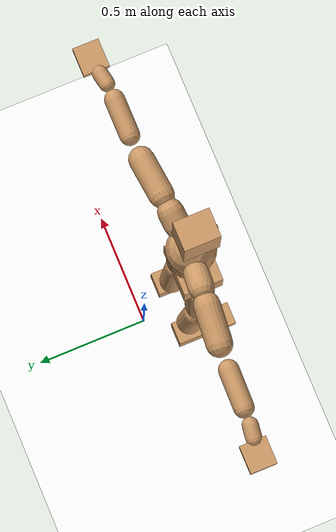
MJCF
<mujoco model="humanoid">
  <option integrator="implicitfast" />

  <visual>
    <global offwidth="1280" offheight="960" />
    <headlight active="1" ambient="0.34 0.34 0.34" diffuse="0.5 0.5 0.5" />
  </visual>

  <default>
    <joint damping="2" stiffness="2" armature="0.01" limited="true" solimplimit="0 .99 .01" />
    <geom condim="1" friction="0.7 0.005 0.0001" solimp=".99 .99 .003" solref="0.015 1" margin="0.001" rgba="0.8 0.6 .4 1" />
    <default class="smplcontact">
      <geom condim="3" friction="1. 0.005 0.0001" solref="0.015 1" solimp="0.98 0.98 0.001" priority="1" />
    </default>
    <default class="stiff_medium">
      <joint stiffness="10" />
    </default>
    <default class="stiff_medium_higher">
      <joint stiffness="50" />
    </default>
    <default class="stiff_high">
      <joint stiffness="100" />
    </default>
  </default>

  <asset>
    <texture type="skybox" builtin="gradient" rgb1="0.99 0.99 0.99" rgb2="0.608 0.828 0.892" width="100" />
    <texture builtin="flat" height="1278" mark="cross" markrgb="1 1 1" name="texgeom" random="0.01" rgb1="0.8 0.6 0.4" rgb2="0.8 0.6 0.4" type="cube" width="127" />
    <texture name="texplane" type="2d" builtin="checker" markrgb="1 1 1" rgb1="0.756 0.772 0.76" rgb2="0.6 0.6 0.6" width="100" height="100" />
    <material name="MatPlane" reflectance="0.5" texture="texplane" texrepeat="1 1" texuniform="true" />
    <material name="geom" texture="texgeom" texuniform="true" />
  </asset>

  <worldbody>
    <light name="tracking_light" pos="0 0 7" dir="0 0 -1" directional="true" cutoff="100" exponent="1" diffuse="1 1 1" specular="0.1 0.1 0.1" mode="trackcom" />
    <camera name="back" pos="0 3 2.4" xyaxes="-1 0 0 0 -1 2" mode="trackcom" />
    <camera name="side" pos="-3 0 2.4" xyaxes="0 -1 0 1 0 2" mode="trackcom" />
    <camera name="front_side" pos="-2.8 -2.8 0.8" xyaxes="0.5 -0.5 0 0.1 0.1 1" mode="trackcom" />
    <geom condim="3" name="floor" pos="0 0 0" rgba="1 1 1 1" size="100 100 .2" type="plane" material="MatPlane" />
    <body name="Pelvis" pos="-0.0018 -0.2233 0.994703" euler="90 0 0">
      <site name="Pelvis" size="0.01" />
      <freejoint name="Pelvis" />
      <geom type="box" pos="-0.0000 -0.0121 -0.0055" size="0.110909 0.0749075 0.0861125" quat="1.0000 0.0000 0.0000 0.0000" density="3165.830099" name="Pelvis" />
      <body name="L_Hip" pos="0.0738438 -0.0971125 -0.007225">
        <joint name="L_Hip_x" type="hinge" pos="0 0 0" axis="1 0 0" stiffness="12.0570453" range="-160.0 22.92" class="stiff_medium" damping="18.611115075663335" armature="0.012767956023173823"/>
        <joint name="L_Hip_y" type="hinge" pos="0 0 0" axis="0 1 0" stiffness="12.049642400000003" range="-70.0 70.0" class="stiff_medium" damping="12.238197968732024" armature="0.012429704098262417"/>
        <joint name="L_Hip_z" type="hinge" pos="0 0 0" axis="0 0 1" stiffness="12.051124" range="-28.65 90.0" class="stiff_medium" damping="12.404606046781211" armature="0.01276845638430415"/>
        <geom type="capsule" density="2040.816327" fromto="0.00733125 -0.0796875 -0.00095625 0.0291125 -0.318963 -0.003825" size="0.0638063" name="L_Hip" />
        <body name="L_Knee" pos="0.0364437 -0.39865 -0.00478125">
          <joint name="L_Knee_x" type="hinge" pos="0 0 0" axis="1 0 0" range="-5.16 171.89" damping="9.889716676944522" armature="0.012708359062400275" stiffness="2.4050729"/>
          <joint name="L_Knee_y" type="hinge" pos="0 0 0" axis="0 1 0" range="-4.58 6.88" damping="9.765792463482095" armature="0.01237188524481116" stiffness="2.4089574"/>
          <joint name="L_Knee_z" type="hinge" pos="0 0 0" axis="0 0 1" range="-6.88 4.58" damping="9.885620689790002" armature="0.01271077467530331" stiffness="2.4026244200000004"/>
          <geom type="capsule" density="1234.567901" fromto="-0.00286875 -0.084575 -0.00924375 -0.0115812 -0.3383 -0.0371875" size="0.0561288" name="L_Knee" />
          <body name="L_Ankle" pos="-0.01445 -0.422875 -0.0464313">
            <joint name="L_Ankle_x" type="hinge" pos="0 0 0" axis="1 0 0" range="-45.84 45.84" class="stiff_medium" damping="7.279881345093119" armature="0.012406609318611695" stiffness="11.8656899"/>
            <joint name="L_Ankle_y" type="hinge" pos="0 0 0" axis="0 1 0" range="-74.48 22.92" class="stiff_medium" damping="3.637837973778958" armature="0.012392268439298068" stiffness="11.865700499999999"/>
            <joint name="L_Ankle_z" type="hinge" pos="0 0 0" axis="0 0 1" range="-4.58 4.58" class="stiff_medium" damping="7.248061967272932" armature="0.012298373079385656" stiffness="11.8657073"/>
            <geom type="box" pos="0.0247563 -0.0253937 0.0257125" size="0.0501113 0.04814 0.0881875" quat="1.0000 0.0000 0.0000 0.0000" density="449.071558" name="L_Ankle" class="smplcontact" />
            <body name="L_Toe" pos="0.02805 -0.0592875 0.126756">
              <joint name="L_Toe_x" type="hinge" pos="0 0 0" axis="1 0 0" range="-91.67 22.92" armature="0.012243906944702197" damping="2.4106650965638154" stiffness="2.3731421"/>
              <joint name="L_Toe_y" type="hinge" pos="0 0 0" axis="0 1 0" range="-4.58 4.58" armature="0.012178059822624987" damping="2.4041740684260575" stiffness="2.37314196"/>
              <joint name="L_Toe_z" type="hinge" pos="0 0 0" axis="0 0 1" range="-4.58 4.58" armature="0.012044916535800984" damping="2.3909944888171846" stiffness="2.37314"/>
              <geom type="box" pos="-0.0031875 0.00584375 0.02635" size="0.0495925 0.02075 0.05146" quat="1.0000 0.0000 0.0000 0.0000" density="423.206892" name="L_Toe" class="smplcontact" />
            </body>
          </body>
        </body>
      </body>
      <body name="R_Hip" pos="-0.0719313 -0.0961562 -0.00456875">
        <joint name="R_Hip_x" type="hinge" pos="0 0 0" axis="1 0 0" stiffness="12.0570453" range="-160.0 22.92" class="stiff_medium" damping="18.611115075663335" armature="0.012767956023173823"/>
        <joint name="R_Hip_y" type="hinge" pos="0 0 0" axis="0 1 0" stiffness="12.049642400000003" range="-70.0 70.0" class="stiff_medium" damping="12.238197968732024" armature="0.012429704098262417"/>
        <joint name="R_Hip_z" type="hinge" pos="0 0 0" axis="0 0 1" stiffness="12.051124" range="-90.0 28.65" class="stiff_medium" damping="12.404606046781211" armature="0.01276845638430415"/>
        <geom type="capsule" density="2040.816327" fromto="-0.00818125 -0.0812812 -0.0019125 -0.0325125 -0.325231 -0.00754375" size="0.0628725" name="R_Hip" />
        <body name="R_Knee" pos="-0.0406938 -0.406512 -0.00945625">
          <joint name="R_Knee_x" type="hinge" pos="0 0 0" axis="1 0 0" range="-5.16 171.89" damping="9.889716676944522" armature="0.012708359062400275" stiffness="2.4050729"/>
          <joint name="R_Knee_y" type="hinge" pos="0 0 0" axis="0 1 0" range="-6.88 4.58" damping="9.765792463482095" armature="0.01237188524481116" stiffness="2.4089574"/>
          <joint name="R_Knee_z" type="hinge" pos="0 0 0" axis="0 0 1" range="-4.58 6.88" damping="9.885620689790002" armature="0.01271077467530331" stiffness="2.4026244200000004"/>
          <geom type="capsule" density="1234.567901" fromto="0.0034 -0.0846812 -0.00903125 0.0133875 -0.338619 -0.0359125" size="0.0561288" name="R_Knee" />
          <body name="R_Ankle" pos="0.0167875 -0.4233 -0.0449437">
            <joint name="R_Ankle_x" type="hinge" pos="0 0 0" axis="1 0 0" range="-45.84 45.84" class="stiff_medium" damping="7.279881345093119" armature="0.012406609318611695" stiffness="11.8656899"/>
            <joint name="R_Ankle_y" type="hinge" pos="0 0 0" axis="0 1 0" range="-22.92 74.48" class="stiff_medium" damping="3.637837973778958" armature="0.012392268439298068" stiffness="11.865700499999999"/>
            <joint name="R_Ankle_z" type="hinge" pos="0 0 0" axis="0 0 1" range="-4.58 4.58" class="stiff_medium" damping="7.248061967272932" armature="0.012298373079385656" stiffness="11.8657073"/>
            <geom type="box" pos="-0.022525 -0.0184875 0.0272" size="0.0501113 0.0495925 0.0897437" quat="1.0000 0.0000 0.0000 0.0000" density="434.700981" name="R_Ankle" class="smplcontact" />
            <body name="R_Toe" pos="-0.0269875 -0.0511062 0.131006">
              <joint name="R_Toe_x" type="hinge" pos="0 0 0" axis="1 0 0" range="-91.67 22.92" armature="0.012243906944702197" damping="2.4106650965638154" stiffness="2.3731421"/>
              <joint name="R_Toe_y" type="hinge" pos="0 0 0" axis="0 1 0" range="-4.58 4.58" armature="0.012178059822624987" damping="2.4041740684260575" stiffness="2.37314196"/>
              <joint name="R_Toe_z" type="hinge" pos="0 0 0" axis="0 0 1" range="-4.58 4.58" armature="0.012044916535800984" damping="2.3909944888171846" stiffness="2.37314"/>
              <geom type="box" pos="0.0044625 0.00478125 0.0241188" size="0.0496963 0.02241 0.0511487" quat="1.0000 0.0000 0.0000 0.0000" density="407.384095" name="R_Toe" class="smplcontact" />
            </body>
          </body>
        </body>
      </body>
      <body name="Torso" pos="-0.002625 0.11445 -0.028035">
        <joint name="Torso_x" type="hinge" pos="0 0 0" axis="1 0 0" range="-25.78 57.3" class="stiff_medium" damping="17.633932648669425" armature="0.011958511967310187" stiffness="11.556829200000001"/>
        <joint name="Torso_y" type="hinge" pos="0 0 0" axis="0 1 0" range="-57.3 57.3" class="stiff_high" damping="24.18914311773822" armature="0.012732940936092601" stiffness="114.88207"/>
        <joint name="Torso_z" type="hinge" pos="0 0 0" axis="0 0 1" range="-34.38 34.38" class="stiff_high" damping="23.770099393457826" armature="0.01222595489725093" stiffness="115.53650204081632"/>
        <geom type="capsule" density="2040.816327" fromto="0.002625 0.06384 0.000525 0.00315 0.078015 0.00063" size="0.0797838" name="Torso" />
        <body name="Spine" pos="0.005775 0.14196 0.001155">
          <joint name="Spine_x" type="hinge" pos="0 0 0" axis="1 0 0" stiffness="11.4951296" range="-25.78 57.3" class="stiff_medium" damping="17.43681682572027" armature="0.01175541648578703"/>
          <joint name="Spine_y" type="hinge" pos="0 0 0" axis="0 1 0" stiffness="11.485546600000001" range="-57.3 57.3" class="stiff_high" damping="9.676407138234314" armature="0.012737864482771982"/>
          <joint name="Spine_z" type="hinge" pos="0 0 0" axis="0 0 1" stiffness="22.9272388" range="-34.38 34.38" class="stiff_high" damping="14.24897016805365" armature="0.012299365385934818"/>
          <geom type="capsule" density="2040.816327" fromto="0.000735 0.02499 0.01197 0.00084 0.030555 0.0147" size="0.0783313" name="Spine" />
          <body name="Chest" pos="0.001575 0.055545 0.02667">
            <joint name="Chest_x" type="hinge" pos="0 0 0" axis="1 0 0" stiffness="11.441318599999999" range="-25.78 57.3" class="stiff_medium" damping="17.316347957951574" armature="0.01164807103812332"/>
            <joint name="Chest_y" type="hinge" pos="0 0 0" axis="0 1 0" stiffness="11.727072600000001" range="-57.3 57.3" class="stiff_high" damping="9.779941013431216" armature="0.012743915495878156"/>
            <joint name="Chest_z" type="hinge" pos="0 0 0" axis="0 0 1" stiffness="22.8055004" range="-34.38 34.38" class="stiff_high" damping="14.240161103593424" armature="0.012349736826372954"/>
            <geom type="capsule" density="2040.816327" fromto="-0.000945 0.07161 -0.018165 -0.00105 0.087465 -0.02226" size="0.103958" name="Chest" />
            <body name="Neck" pos="-0.00294 0.224595 -0.045045">
              <joint name="Neck_x" type="hinge" pos="0 0 0" axis="1 0 0" range="-28.65 57.3" class="stiff_medium_higher" damping="10.634721418697984" armature="0.010665688146100675" stiffness="53.019223000000004"/>
              <joint name="Neck_y" type="hinge" pos="0 0 0" axis="0 1 0" range="-40.11 40.11" class="stiff_medium_higher" damping="10.654905542289592" armature="0.010724611547814582" stiffness="52.928263"/>
              <joint name="Neck_z" type="hinge" pos="0 0 0" axis="0 0 1" range="-40.11 40.11" class="stiff_medium_higher" damping="10.607102824165203" armature="0.01065989610780139" stiffness="52.77285499999999"/>
              <geom type="capsule" density="1000" fromto="0.00105 0.01365 0.010815 0.004305 0.0546 0.043155" size="0.045235" name="Neck" />
              <body name="Head" pos="0.005265 0.0658125 0.0519412">
                <joint name="Head_x" type="hinge" pos="0 0 0" axis="1 0 0" range="-28.65 57.3" class="stiff_medium_higher" damping="2.1149987447763574" armature="0.010640895595426915" stiffness="52.5475"/>
                <joint name="Head_y" type="hinge" pos="0 0 0" axis="0 1 0" range="-40.11 40.11" class="stiff_medium_higher" damping="2.1149959100124205" armature="0.010640867071148166" stiffness="52.5475"/>
                <joint name="Head_z" type="hinge" pos="0 0 0" axis="0 0 1" range="-40.11 40.11" class="stiff_medium_higher" damping="2.1149989184406937" armature="0.010640897342892868" stiffness="52.5475"/>
                <geom type="box" pos="-0.0042525 0.088695 -0.011745" size="0.0613575 0.116843 0.07695" quat="1.0000 0.0000 0.0000 0.0000" density="1018.069894" name="Head" />
                <geom type="capsule" name="nose" size="0.02025 0.010125" pos="0 0.070875 0.050625" quat="1 0 0 0" mass="0" contype="0" conaffinity="0" />
              </body>
            </body>
            <body name="L_Thorax" pos="0.083725 0.129306 -0.0362312">
              <joint name="L_Thorax_x" type="hinge" pos="0 0 0" axis="1 0 0" range="-10.89 4.58" class="stiff_medium_higher" damping="24.55582574022964" armature="0.012520125034701426" stiffness="60.20193250000001"/>
              <joint name="L_Thorax_y" type="hinge" pos="0 0 0" axis="0 1 0" range="-28.65 17.19" class="stiff_medium_higher" damping="24.809231041642242" armature="0.012772502825784782" stiffness="60.2366225"/>
              <joint name="L_Thorax_z" type="hinge" pos="0 0 0" axis="0 0 1" range="-31.51 40.11" class="stiff_medium_higher" damping="24.809317275990285" armature="0.012772730929762175" stiffness="60.23596550000001"/>
              <geom type="capsule" density="1000" fromto="0.0193375 0.00648125 -0.0019125 0.07735 0.025925 -0.00754375" size="0.0540538" name="L_Thorax" />
              <body name="L_Shoulder" pos="0.0966875 0.0324062 -0.00945625">
                <joint name="L_Shoulder_x" type="hinge" pos="0 0 0" axis="1 0 0" range="-97.4 97.4" class="stiff_medium" damping="7.336216481322724" armature="0.01242018872003058" stiffness="12.036870299999997"/>
                <joint name="L_Shoulder_y" type="hinge" pos="0 0 0" axis="0 1 0" range="-108.86 80.21" class="stiff_medium" damping="7.439025620270408" armature="0.01276314692392544" stiffness="12.0440303"/>
                <joint name="L_Shoulder_z" type="hinge" pos="0 0 0" axis="0 0 1" range="-97.4 85.94" class="stiff_medium" damping="7.439176639871107" armature="0.012763438779619492" stiffness="12.044243899999998"/>
                <geom type="capsule" density="1000" fromto="0.0551438 -0.0027625 -0.00584375 0.220681 -0.0108375 -0.023375" size="0.0536388" name="L_Shoulder" />
                <body name="L_Elbow" pos="0.275825 -0.0136 -0.0292188">
                  <joint name="L_Elbow_x" type="hinge" pos="0 0 0" axis="1 0 0" range="-17.19 4.58" damping="6.068876824023298" armature="0.012262371643168866" stiffness="2.40288042"/>
                  <joint name="L_Elbow_y" type="hinge" pos="0 0 0" axis="0 1 0" range="-180.0 17.19" damping="6.1805303657014115" armature="0.0127176642303541" stiffness="2.40289128"/>
                  <joint name="L_Elbow_z" type="hinge" pos="0 0 0" axis="0 0 1" range="-100.84 4.58" damping="6.180702179993542" armature="0.012719196018290597" stiffness="2.4027354799999996"/>
                  <geom type="capsule" density="1000" fromto="0.0529125 0.0019125 -0.0002125 0.211862 0.00765 -0.00095625" size="0.0420188" name="L_Elbow" />
                  <body name="L_Wrist" pos="0.264775 0.0095625 -0.001275">
                    <joint name="L_Wrist_x" type="hinge" pos="0 0 0" axis="1 0 0" range="-180.0 22.92" armature="0.012219968858193871" damping="2.41355047935313" stiffness="2.3834864000000002"/>
                    <joint name="L_Wrist_y" type="hinge" pos="0 0 0" axis="0 1 0" range="-17.19 17.19" armature="0.012566462316760247" damping="2.448297100695518" stiffness="2.38498256"/>
                    <joint name="L_Wrist_z" type="hinge" pos="0 0 0" axis="0 0 1" range="-22.92 22.92" armature="0.012585698224598164" damping="2.449922537514998" stiffness="2.38450038"/>
                    <geom type="capsule" density="1000" fromto="0.01785 -0.0017 -0.0031875 0.0714 -0.00690625 -0.01275" size="0.0329925" name="L_Wrist" class="smplcontact" />
                    <body name="L_Hand" pos="0.08925 -0.0087125 -0.0158313">
                      <joint name="L_Hand_x" type="hinge" pos="0 0 0" axis="1 0 0" range="-17.19 17.19" armature="0.012046551178696583" damping="2.3911570997598584" stiffness="2.37314074"/>
                      <joint name="L_Hand_y" type="hinge" pos="0 0 0" axis="0 1 0" range="-51.57 51.57" armature="0.01232991505954797" damping="2.4191164817825372" stiffness="2.37314066"/>
                      <joint name="L_Hand_z" type="hinge" pos="0 0 0" axis="0 0 1" range="-91.67 91.67" armature="0.012405449704475498" damping="2.426515251018575" stiffness="2.373141"/>
                      <geom type="box" pos="0.0523812 0.0010625 -0.0061625" size="0.0606938 0.0163925 0.0558175" quat="1.0000 0.0000 0.0000 0.0000" density="400.552564" name="L_Hand" class="smplcontact" />
                    </body>
                  </body>
                </body>
              </body>
            </body>
            <body name="R_Thorax" pos="-0.0869125 0.126225 -0.0410125">
              <joint name="R_Thorax_x" type="hinge" pos="0 0 0" axis="1 0 0" range="-10.89 4.58" class="stiff_medium_higher" damping="24.55582574022964" armature="0.012520125034701426" stiffness="60.20193250000001"/>
              <joint name="R_Thorax_y" type="hinge" pos="0 0 0" axis="0 1 0" range="-17.19 28.65" class="stiff_medium_higher" damping="24.809231041642242" armature="0.012772502825784782" stiffness="60.2366225"/>
              <joint name="R_Thorax_z" type="hinge" pos="0 0 0" axis="0 0 1" range="-40.11 31.51" class="stiff_medium_higher" damping="24.809317275990285" armature="0.012772730929762175" stiffness="60.23596550000001"/>
              <geom type="capsule" density="1000" fromto="-0.0204 0.00690625 -0.0019125 -0.0816 0.027625 -0.00775625" size="0.0530163" name="R_Thorax" />
              <body name="R_Shoulder" pos="-0.102 0.0346375 -0.00966875">
                <joint name="R_Shoulder_x" type="hinge" pos="0 0 0" axis="1 0 0" range="-97.4 97.4" class="stiff_medium" damping="7.336216481322724" armature="0.01242018872003058" stiffness="12.036870299999997"/>
                <joint name="R_Shoulder_y" type="hinge" pos="0 0 0" axis="0 1 0" range="-80.21 108.86" class="stiff_medium" damping="7.439025620270408" armature="0.01276314692392544" stiffness="12.0440303"/>
                <joint name="R_Shoulder_z" type="hinge" pos="0 0 0" axis="0 0 1" range="-85.94 97.4" class="stiff_medium" damping="7.439176639871107" armature="0.012763438779619492" stiffness="12.044243899999998"/>
                <geom type="capsule" density="1000" fromto="-0.0538687 -0.00286875 -0.00456875 -0.215688 -0.0113687 -0.0181688" size="0.0550913" name="R_Shoulder" />
                <body name="R_Elbow" pos="-0.269556 -0.0141312 -0.0227375">
                  <joint name="R_Elbow_x" type="hinge" pos="0 0 0" axis="1 0 0" range="-17.19 4.58" damping="6.068876824023298" armature="0.012262371643168866" stiffness="2.40288042"/>
                  <joint name="R_Elbow_y" type="hinge" pos="0 0 0" axis="0 1 0" range="-17.19 180.0" damping="6.1805303657014115" armature="0.0127176642303541" stiffness="2.40289128"/>
                  <joint name="R_Elbow_z" type="hinge" pos="0 0 0" axis="0 0 1" range="-4.58 100.84" damping="6.180702179993542" armature="0.012719196018290597" stiffness="2.4027354799999996"/>
                  <geom type="capsule" density="1000" fromto="-0.0542938 0.0017 -0.00116875 -0.216963 0.0065875 -0.004675" size="0.04233" name="R_Elbow" />
                  <body name="R_Wrist" pos="-0.271256 0.0082875 -0.00595">
                    <joint name="R_Wrist_x" type="hinge" pos="0 0 0" axis="1 0 0" range="-180.0 22.92" armature="0.012219968858193871" damping="2.41355047935313" stiffness="2.3834864000000002"/>
                    <joint name="R_Wrist_y" type="hinge" pos="0 0 0" axis="0 1 0" range="-17.19 17.19" armature="0.012566462316760247" damping="2.448297100695518" stiffness="2.38498256"/>
                    <joint name="R_Wrist_z" type="hinge" pos="0 0 0" axis="0 0 1" range="-22.92 22.92" armature="0.012585698224598164" damping="2.449922537514998" stiffness="2.38450038"/>
                    <geom type="capsule" density="1000" fromto="-0.0179562 -0.001275 -0.00223125 -0.0719313 -0.00520625 -0.00881875" size="0.0338225" name="R_Wrist" class="smplcontact" />
                    <body name="R_Hand" pos="-0.0898875 -0.00648125 -0.0109438">
                      <joint name="R_Hand_x" type="hinge" pos="0 0 0" axis="1 0 0" range="-17.19 17.19" armature="0.012046551178696583" damping="2.3911570997598584" stiffness="2.37314074"/>
                      <joint name="R_Hand_y" type="hinge" pos="0 0 0" axis="0 1 0" range="-51.57 51.57" armature="0.01232991505954797" damping="2.4191164817825372" stiffness="2.37314066"/>
                      <joint name="R_Hand_z" type="hinge" pos="0 0 0" axis="0 0 1" range="-91.67 91.67" armature="0.012405449704475498" damping="2.426515251018575" stiffness="2.373141"/>
                      <geom type="box" pos="-0.0490875 -0.00095625 -0.00839375" size="0.0590338 0.017015 0.0566475" quat="1.0000 0.0000 0.0000 0.0000" density="403.679611" name="R_Hand" class="smplcontact" />
                    </body>
                  </body>
                </body>
              </body>
            </body>
          </body>
        </body>
      </body>
    </body>
  </worldbody>
  <actuator>
    <general name="L_Hip_x" joint="L_Hip_x" biastype="affine" gainprm="346.4351598873321" biasprm="-259.6180391283374 -217.0268154 -2.4814820100884445" ctrllimited="true" ctrlrange="-1 1" forcerange="-434.0536308 434.0536308" />
    <general name="L_Hip_y" joint="L_Hip_y" biastype="affine" gainprm="264.9854762955686" biasprm="0.0 -216.89356320000005 -2.4476395937464046" ctrllimited="true" ctrlrange="-1 1" forcerange="-433.7871264000001 433.7871264000001" />
    <general name="L_Hip_z" joint="L_Hip_z" biastype="affine" gainprm="224.60280447814964" biasprm="116.13469915494714 -216.920232 -2.480921209356242" ctrllimited="true" ctrlrange="-1 1" forcerange="-433.840464 433.840464" />
    <general name="L_Knee_x" joint="L_Knee_x" biastype="affine" gainprm="334.4367984058894" biasprm="314.9429392726006 -216.456561 -2.4724291692361304" ctrllimited="true" ctrlrange="-1 1" forcerange="-432.913122 432.913122" />
    <general name="L_Knee_y" joint="L_Knee_y" biastype="affine" gainprm="21.68221362441445" biasprm="4.351578650624192 -216.806166 -2.4414481158705237" ctrllimited="true" ctrlrange="-1 1" forcerange="-433.612332 433.612332" />
    <general name="L_Knee_z" joint="L_Knee_z" biastype="affine" gainprm="21.62521260594931" biasprm="-4.340138655644277 -216.23619780000004 -2.4714051724475006" ctrllimited="true" ctrlrange="-1 1" forcerange="-432.4723956000001 432.4723956000001" />
    <general name="L_Ankle_x" joint="L_Ankle_x" biastype="affine" gainprm="85.4392603913567" biasprm="0.0 -106.7912091 -2.4266271150310397" ctrllimited="true" ctrlrange="-1 1" forcerange="-213.5824182 213.5824182" />
    <general name="L_Ankle_y" joint="L_Ankle_y" biastype="affine" gainprm="90.76997596240955" biasprm="-48.050307603920295 -106.79130449999998 -2.425225315852639" ctrllimited="true" ctrlrange="-1 1" forcerange="-213.58260899999996 213.58260899999996" />
    <general name="L_Ankle_z" joint="L_Ankle_z" biastype="affine" gainprm="8.536483124281833" biasprm="0.0 -106.79136570000001 -2.416020655757644" ctrllimited="true" ctrlrange="-1 1" forcerange="-213.58273140000003 213.58273140000003" />
    <general name="L_Toe_x" joint="L_Toe_x" biastype="affine" gainprm="85.43195327649484" biasprm="-51.25618978758199 -85.4331156 -0.9642660386255262" ctrllimited="true" ctrlrange="-1 1" forcerange="-170.8662312 170.8662312" />
    <general name="L_Toe_y" joint="L_Toe_y" biastype="affine" gainprm="6.829187938274901" biasprm="0.0 -85.43311055999999 -0.961669627370423" ctrllimited="true" ctrlrange="-1 1" forcerange="-170.86622111999998 170.86622111999998" />
    <general name="L_Toe_z" joint="L_Toe_z" biastype="affine" gainprm="6.829182297985114" biasprm="0.0 -85.43303999999999 -0.9563977955268739" ctrllimited="true" ctrlrange="-1 1" forcerange="-170.86607999999998 170.86607999999998" />
    <general name="R_Hip_x" joint="R_Hip_x" biastype="affine" gainprm="346.4351598873321" biasprm="-259.6180391283374 -217.0268154 -2.4814820100884445" ctrllimited="true" ctrlrange="-1 1" forcerange="-434.0536308 434.0536308" />
    <general name="R_Hip_y" joint="R_Hip_y" biastype="affine" gainprm="264.9854762955686" biasprm="0.0 -216.89356320000005 -2.4476395937464046" ctrllimited="true" ctrlrange="-1 1" forcerange="-433.7871264000001 433.7871264000001" />
    <general name="R_Hip_z" joint="R_Hip_z" biastype="affine" gainprm="224.60280447814964" biasprm="-116.13469915494714 -216.920232 -2.480921209356242" ctrllimited="true" ctrlrange="-1 1" forcerange="-433.840464 433.840464" />
    <general name="R_Knee_x" joint="R_Knee_x" biastype="affine" gainprm="334.4367984058894" biasprm="314.9429392726006 -216.456561 -2.4724291692361304" ctrllimited="true" ctrlrange="-1 1" forcerange="-432.913122 432.913122" />
    <general name="R_Knee_y" joint="R_Knee_y" biastype="affine" gainprm="21.68221362441445" biasprm="-4.351578650624192 -216.806166 -2.4414481158705237" ctrllimited="true" ctrlrange="-1 1" forcerange="-433.612332 433.612332" />
    <general name="R_Knee_z" joint="R_Knee_z" biastype="affine" gainprm="21.62521260594931" biasprm="4.340138655644277 -216.23619780000004 -2.4714051724475006" ctrllimited="true" ctrlrange="-1 1" forcerange="-432.4723956000001 432.4723956000001" />
    <general name="R_Ankle_x" joint="R_Ankle_x" biastype="affine" gainprm="85.4392603913567" biasprm="0.0 -106.7912091 -2.4266271150310397" ctrllimited="true" ctrlrange="-1 1" forcerange="-213.5824182 213.5824182" />
    <general name="R_Ankle_y" joint="R_Ankle_y" biastype="affine" gainprm="90.76997596240955" biasprm="48.050307603920295 -106.79130449999998 -2.425225315852639" ctrllimited="true" ctrlrange="-1 1" forcerange="-213.58260899999996 213.58260899999996" />
    <general name="R_Ankle_z" joint="R_Ankle_z" biastype="affine" gainprm="8.536483124281833" biasprm="0.0 -106.79136570000001 -2.416020655757644" ctrllimited="true" ctrlrange="-1 1" forcerange="-213.58273140000003 213.58273140000003" />
    <general name="R_Toe_x" joint="R_Toe_x" biastype="affine" gainprm="85.43195327649484" biasprm="-51.25618978758199 -85.4331156 -0.9642660386255262" ctrllimited="true" ctrlrange="-1 1" forcerange="-170.8662312 170.8662312" />
    <general name="R_Toe_y" joint="R_Toe_y" biastype="affine" gainprm="6.829187938274901" biasprm="0.0 -85.43311055999999 -0.961669627370423" ctrllimited="true" ctrlrange="-1 1" forcerange="-170.86622111999998 170.86622111999998" />
    <general name="R_Toe_z" joint="R_Toe_z" biastype="affine" gainprm="6.829182297985114" biasprm="0.0 -85.43303999999999 -0.9563977955268739" ctrllimited="true" ctrlrange="-1 1" forcerange="-170.86607999999998 170.86607999999998" />
    <general name="Torso_x" joint="Torso_x" biastype="affine" gainprm="201.0915382799052" biasprm="76.29279353132655 -277.3639008 -4.7023820396451805" ctrllimited="true" ctrlrange="-1 1" forcerange="-416.0458512 416.0458512" />
    <general name="Torso_y" joint="Torso_y" biastype="affine" gainprm="275.7372776958679" biasprm="0.0 -275.71696799999995 -4.837828623547644" ctrllimited="true" ctrlrange="-1 1" forcerange="-413.575452 413.575452" />
    <general name="Torso_z" joint="Torso_z" biastype="affine" gainprm="166.3848181734771" biasprm="0.0 -277.28760489795917 -4.754019878691565" ctrllimited="true" ctrlrange="-1 1" forcerange="-415.9314073469387 415.9314073469387" />
    <general name="Spine_x" joint="Spine_x" biastype="affine" gainprm="200.01795077068985" biasprm="75.88548156345863 -275.8831104 -4.649817820192072" ctrllimited="true" ctrlrange="-1 1" forcerange="-413.8246656 413.8246656" />
    <general name="Spine_y" joint="Spine_y" biastype="affine" gainprm="275.67342339261745" biasprm="0.0 -275.65311840000004 -4.838203569117157" ctrllimited="true" ctrlrange="-1 1" forcerange="-413.4796776 413.4796776" />
    <general name="Spine_z" joint="Spine_z" biastype="affine" gainprm="165.08827909686198" biasprm="0.0 -275.12686560000003 -4.749656722684549" ctrllimited="true" ctrlrange="-1 1" forcerange="-412.6902984 412.6902984" />
    <general name="Chest_x" joint="Chest_x" biastype="affine" gainprm="199.0816267514355" biasprm="75.53024645167604 -274.59164639999995 -4.617692788787086" ctrllimited="true" ctrlrange="-1 1" forcerange="-411.8874696 411.8874696" />
    <general name="Chest_y" joint="Chest_y" biastype="affine" gainprm="281.4704743800146" biasprm="0.0 -281.44974240000005 -4.889970506715608" ctrllimited="true" ctrlrange="-1 1" forcerange="-422.17461360000004 422.17461360000004" />
    <general name="Chest_z" joint="Chest_z" biastype="affine" gainprm="164.2116980514373" biasprm="0.0 -273.6660048 -4.746720367864475" ctrllimited="true" ctrlrange="-1 1" forcerange="-410.4990072 410.4990072" />
    <general name="Neck_x" joint="Neck_x" biastype="affine" gainprm="28.632489373696725" biasprm="9.544163124565575 -38.17384056 -0.8507777134958387" ctrllimited="true" ctrlrange="-1 1" forcerange="-76.34768112 76.34768112" />
    <general name="Neck_y" joint="Neck_y" biastype="affine" gainprm="26.677809531862504" biasprm="0.0 -38.10834936 -0.8523924433831674" ctrllimited="true" ctrlrange="-1 1" forcerange="-76.21669872 76.21669872" />
    <general name="Neck_z" joint="Neck_z" biastype="affine" gainprm="26.59947813028736" biasprm="0.0 -37.9964556 -0.8485682259332162" ctrllimited="true" ctrlrange="-1 1" forcerange="-75.9929112 75.9929112" />
    <general name="Head_x" joint="Head_x" biastype="affine" gainprm="18.918493459932808" biasprm="6.306164486644269 -25.2228 -0.845999497910543" ctrllimited="true" ctrlrange="-1 1" forcerange="-50.4456 50.4456" />
    <general name="Head_y" joint="Head_y" biastype="affine" gainprm="17.657260562603952" biasprm="0.0 -25.2228 -0.8459983640049682" ctrllimited="true" ctrlrange="-1 1" forcerange="-50.4456 50.4456" />
    <general name="Head_z" joint="Head_z" biastype="affine" gainprm="17.657260562603952" biasprm="0.0 -25.2228 -0.8459995673762775" ctrllimited="true" ctrlrange="-1 1" forcerange="-50.4456 50.4456" />
    <general name="L_Thorax_x" joint="L_Thorax_x" biastype="affine" gainprm="19.50560206052911" biasprm="-7.9560665159624255 -144.48463800000002 -1.9644660592183714" ctrllimited="true" ctrlrange="-1 1" forcerange="-288.96927600000004 288.96927600000004" />
    <general name="L_Thorax_y" joint="L_Thorax_y" biastype="affine" gainprm="57.83141722896764" biasprm="-14.45785430724191 -144.567894 -1.9847384833313795" ctrllimited="true" ctrlrange="-1 1" forcerange="-289.135788 289.135788" />
    <general name="L_Thorax_z" joint="L_Thorax_z" biastype="affine" gainprm="90.3542959521121" biasprm="10.849580357276793 -144.56631720000001 -1.984745382079223" ctrllimited="true" ctrlrange="-1 1" forcerange="-289.13263440000003 289.13263440000003" />
    <general name="L_Shoulder_x" joint="L_Shoulder_x" biastype="affine" gainprm="98.21801274858439" biasprm="0.0 -57.77697743999999 -1.9563243950193934" ctrllimited="true" ctrlrange="-1 1" forcerange="-115.55395487999998 115.55395487999998" />
    <general name="L_Shoulder_y" joint="L_Shoulder_y" biastype="affine" gainprm="95.38565645873679" biasprm="-14.453900976055476 -57.81134544 -1.9837401654054423" ctrllimited="true" ctrlrange="-1 1" forcerange="-115.62269088 115.62269088" />
    <general name="L_Shoulder_z" joint="L_Shoulder_z" biastype="affine" gainprm="92.49651665341824" biasprm="-5.781662925974558 -57.81237071999999 -1.983780437298962" ctrllimited="true" ctrlrange="-1 1" forcerange="-115.62474143999998 115.62474143999998" />
    <general name="L_Elbow_x" joint="L_Elbow_x" biastype="affine" gainprm="16.43389320091555" biasprm="-9.519126929882642 -86.50369511999999 -0.9710202918437277" ctrllimited="true" ctrlrange="-1 1" forcerange="-173.00739023999998 173.00739023999998" />
    <general name="L_Elbow_y" joint="L_Elbow_y" biastype="affine" gainprm="148.85686938093244" biasprm="-122.90373195349466 -86.50408608 -0.9888848585122259" ctrllimited="true" ctrlrange="-1 1" forcerange="-173.00817216 173.00817216" />
    <general name="L_Elbow_z" joint="L_Elbow_z" biastype="affine" gainprm="79.57540286868368" biasprm="-72.66105369132511 -86.49847727999999 -0.9889123487989668" ctrllimited="true" ctrlrange="-1 1" forcerange="-172.99695455999998 172.99695455999998" />
    <general name="L_Wrist_x" joint="L_Wrist_x" biastype="affine" gainprm="25.324224457626944" biasprm="-19.60343572740016 -14.3009184 -0.965420191741252" ctrllimited="true" ctrlrange="-1 1" forcerange="-28.6018368 28.6018368" />
    <general name="L_Wrist_y" joint="L_Wrist_y" biastype="affine" gainprm="4.293284834046702" biasprm="0.0 -14.30989536 -0.9793188402782071" ctrllimited="true" ctrlrange="-1 1" forcerange="-28.61979072 28.61979072" />
    <general name="L_Wrist_z" joint="L_Wrist_z" biastype="affine" gainprm="5.723222461485614" biasprm="0.0 -14.307002279999999 -0.9799690150059993" ctrllimited="true" ctrlrange="-1 1" forcerange="-28.614004559999998 28.614004559999998" />
    <general name="L_Hand_x" joint="L_Hand_x" biastype="affine" gainprm="4.271967987933785" biasprm="0.0 -14.238844440000001 -0.9564628399039434" ctrllimited="true" ctrlrange="-1 1" forcerange="-28.477688880000002 28.477688880000002" />
    <general name="L_Hand_y" joint="L_Hand_y" biastype="affine" gainprm="12.815903531769528" biasprm="0.0 -14.238843959999999 -0.9676465927130149" ctrllimited="true" ctrlrange="-1 1" forcerange="-28.477687919999997 28.477687919999997" />
    <general name="L_Hand_z" joint="L_Hand_z" biastype="affine" gainprm="22.781346617720192" biasprm="0.0 -14.238845999999999 -0.97060610040743" ctrllimited="true" ctrlrange="-1 1" forcerange="-28.477691999999998 28.477691999999998" />
    <general name="R_Thorax_x" joint="R_Thorax_x" biastype="affine" gainprm="19.50560206052911" biasprm="-7.9560665159624255 -144.48463800000002 -1.9644660592183714" ctrllimited="true" ctrlrange="-1 1" forcerange="-288.96927600000004 288.96927600000004" />
    <general name="R_Thorax_y" joint="R_Thorax_y" biastype="affine" gainprm="57.83141722896764" biasprm="14.4578543072419 -144.567894 -1.9847384833313795" ctrllimited="true" ctrlrange="-1 1" forcerange="-289.135788 289.135788" />
    <general name="R_Thorax_z" joint="R_Thorax_z" biastype="affine" gainprm="90.3542959521121" biasprm="-10.849580357276793 -144.56631720000001 -1.984745382079223" ctrllimited="true" ctrlrange="-1 1" forcerange="-289.13263440000003 289.13263440000003" />
    <general name="R_Shoulder_x" joint="R_Shoulder_x" biastype="affine" gainprm="98.21801274858439" biasprm="0.0 -57.77697743999999 -1.9563243950193934" ctrllimited="true" ctrlrange="-1 1" forcerange="-115.55395487999998 115.55395487999998" />
    <general name="R_Shoulder_y" joint="R_Shoulder_y" biastype="affine" gainprm="95.38565645873679" biasprm="14.453900976055476 -57.81134544 -1.9837401654054423" ctrllimited="true" ctrlrange="-1 1" forcerange="-115.62269088 115.62269088" />
    <general name="R_Shoulder_z" joint="R_Shoulder_z" biastype="affine" gainprm="92.49651665341824" biasprm="5.781662925974545 -57.81237071999999 -1.983780437298962" ctrllimited="true" ctrlrange="-1 1" forcerange="-115.62474143999998 115.62474143999998" />
    <general name="R_Elbow_x" joint="R_Elbow_x" biastype="affine" gainprm="16.43389320091555" biasprm="-9.519126929882642 -86.50369511999999 -0.9710202918437277" ctrllimited="true" ctrlrange="-1 1" forcerange="-173.00739023999998 173.00739023999998" />
    <general name="R_Elbow_y" joint="R_Elbow_y" biastype="affine" gainprm="148.85686938093244" biasprm="122.90373195349466 -86.50408608 -0.9888848585122259" ctrllimited="true" ctrlrange="-1 1" forcerange="-173.00817216 173.00817216" />
    <general name="R_Elbow_z" joint="R_Elbow_z" biastype="affine" gainprm="79.57540286868368" biasprm="72.6610536913251 -86.49847727999999 -0.9889123487989668" ctrllimited="true" ctrlrange="-1 1" forcerange="-172.99695455999998 172.99695455999998" />
    <general name="R_Wrist_x" joint="R_Wrist_x" biastype="affine" gainprm="25.324224457626944" biasprm="-19.60343572740016 -14.3009184 -0.965420191741252" ctrllimited="true" ctrlrange="-1 1" forcerange="-28.6018368 28.6018368" />
    <general name="R_Wrist_y" joint="R_Wrist_y" biastype="affine" gainprm="4.293284834046702" biasprm="0.0 -14.30989536 -0.9793188402782071" ctrllimited="true" ctrlrange="-1 1" forcerange="-28.61979072 28.61979072" />
    <general name="R_Wrist_z" joint="R_Wrist_z" biastype="affine" gainprm="5.723222461485614" biasprm="0.0 -14.307002279999999 -0.9799690150059993" ctrllimited="true" ctrlrange="-1 1" forcerange="-28.614004559999998 28.614004559999998" />
    <general name="R_Hand_x" joint="R_Hand_x" biastype="affine" gainprm="4.271967987933785" biasprm="0.0 -14.238844440000001 -0.9564628399039434" ctrllimited="true" ctrlrange="-1 1" forcerange="-28.477688880000002 28.477688880000002" />
    <general name="R_Hand_y" joint="R_Hand_y" biastype="affine" gainprm="12.815903531769528" biasprm="0.0 -14.238843959999999 -0.9676465927130149" ctrllimited="true" ctrlrange="-1 1" forcerange="-28.477687919999997 28.477687919999997" />
    <general name="R_Hand_z" joint="R_Hand_z" biastype="affine" gainprm="22.781346617720192" biasprm="0.0 -14.238845999999999 -0.97060610040743" ctrllimited="true" ctrlrange="-1 1" forcerange="-28.477691999999998 28.477691999999998" />
  </actuator>
  <contact>
    <exclude body1="Torso" body2="Chest" />
    <exclude body1="Head" body2="Chest" />
    <exclude body1="R_Knee" body2="R_Toe" />
    <exclude body1="R_Knee" body2="L_Ankle" />
    <exclude body1="R_Knee" body2="L_Toe" />
    <exclude body1="L_Knee" body2="L_Toe" />
    <exclude body1="L_Knee" body2="R_Ankle" />
    <exclude body1="L_Knee" body2="R_Toe" />
    <exclude body1="L_Shoulder" body2="Chest" />
    <exclude body1="R_Shoulder" body2="Chest" />
  </contact>
  <sensor>
    <framelinvel name="sensor_Pelvis_framelinvel" objtype="xbody" objname="Pelvis" />
    <framelinvel name="sensor_L_Hip_framelinvel" objtype="xbody" objname="L_Hip" />
    <framelinvel name="sensor_L_Knee_framelinvel" objtype="xbody" objname="L_Knee" />
    <framelinvel name="sensor_L_Ankle_framelinvel" objtype="xbody" objname="L_Ankle" />
    <framelinvel name="sensor_L_Toe_framelinvel" objtype="xbody" objname="L_Toe" />
    <framelinvel name="sensor_R_Hip_framelinvel" objtype="xbody" objname="R_Hip" />
    <framelinvel name="sensor_R_Knee_framelinvel" objtype="xbody" objname="R_Knee" />
    <framelinvel name="sensor_R_Ankle_framelinvel" objtype="xbody" objname="R_Ankle" />
    <framelinvel name="sensor_R_Toe_framelinvel" objtype="xbody" objname="R_Toe" />
    <framelinvel name="sensor_Torso_framelinvel" objtype="xbody" objname="Torso" />
    <framelinvel name="sensor_Spine_framelinvel" objtype="xbody" objname="Spine" />
    <framelinvel name="sensor_Chest_framelinvel" objtype="xbody" objname="Chest" />
    <framelinvel name="sensor_Neck_framelinvel" objtype="xbody" objname="Neck" />
    <framelinvel name="sensor_Head_framelinvel" objtype="xbody" objname="Head" />
    <framelinvel name="sensor_L_Thorax_framelinvel" objtype="xbody" objname="L_Thorax" />
    <framelinvel name="sensor_L_Shoulder_framelinvel" objtype="xbody" objname="L_Shoulder" />
    <framelinvel name="sensor_L_Elbow_framelinvel" objtype="xbody" objname="L_Elbow" />
    <framelinvel name="sensor_L_Wrist_framelinvel" objtype="xbody" objname="L_Wrist" />
    <framelinvel name="sensor_L_Hand_framelinvel" objtype="xbody" objname="L_Hand" />
    <framelinvel name="sensor_R_Thorax_framelinvel" objtype="xbody" objname="R_Thorax" />
    <framelinvel name="sensor_R_Shoulder_framelinvel" objtype="xbody" objname="R_Shoulder" />
    <framelinvel name="sensor_R_Elbow_framelinvel" objtype="xbody" objname="R_Elbow" />
    <framelinvel name="sensor_R_Wrist_framelinvel" objtype="xbody" objname="R_Wrist" />
    <framelinvel name="sensor_R_Hand_framelinvel" objtype="xbody" objname="R_Hand" />
    <frameangvel name="sensor_Pelvis_frameangvel" objtype="xbody" objname="Pelvis" />
    <frameangvel name="sensor_L_Hip_frameangvel" objtype="xbody" objname="L_Hip" />
    <frameangvel name="sensor_L_Knee_frameangvel" objtype="xbody" objname="L_Knee" />
    <frameangvel name="sensor_L_Ankle_frameangvel" objtype="xbody" objname="L_Ankle" />
    <frameangvel name="sensor_L_Toe_frameangvel" objtype="xbody" objname="L_Toe" />
    <frameangvel name="sensor_R_Hip_frameangvel" objtype="xbody" objname="R_Hip" />
    <frameangvel name="sensor_R_Knee_frameangvel" objtype="xbody" objname="R_Knee" />
    <frameangvel name="sensor_R_Ankle_frameangvel" objtype="xbody" objname="R_Ankle" />
    <frameangvel name="sensor_R_Toe_frameangvel" objtype="xbody" objname="R_Toe" />
    <frameangvel name="sensor_Torso_frameangvel" objtype="xbody" objname="Torso" />
    <frameangvel name="sensor_Spine_frameangvel" objtype="xbody" objname="Spine" />
    <frameangvel name="sensor_Chest_frameangvel" objtype="xbody" objname="Chest" />
    <frameangvel name="sensor_Neck_frameangvel" objtype="xbody" objname="Neck" />
    <frameangvel name="sensor_Head_frameangvel" objtype="xbody" objname="Head" />
    <frameangvel name="sensor_L_Thorax_frameangvel" objtype="xbody" objname="L_Thorax" />
    <frameangvel name="sensor_L_Shoulder_frameangvel" objtype="xbody" objname="L_Shoulder" />
    <frameangvel name="sensor_L_Elbow_frameangvel" objtype="xbody" objname="L_Elbow" />
    <frameangvel name="sensor_L_Wrist_frameangvel" objtype="xbody" objname="L_Wrist" />
    <frameangvel name="sensor_L_Hand_frameangvel" objtype="xbody" objname="L_Hand" />
    <frameangvel name="sensor_R_Thorax_frameangvel" objtype="xbody" objname="R_Thorax" />
    <frameangvel name="sensor_R_Shoulder_frameangvel" objtype="xbody" objname="R_Shoulder" />
    <frameangvel name="sensor_R_Elbow_frameangvel" objtype="xbody" objname="R_Elbow" />
    <frameangvel name="sensor_R_Wrist_frameangvel" objtype="xbody" objname="R_Wrist" />
    <frameangvel name="sensor_R_Hand_frameangvel" objtype="xbody" objname="R_Hand" />
    <subtreelinvel name="Chest_subtreelinvel" body="Chest" />
    <gyro name="Pelvis_gyro" site="Pelvis" />
  </sensor>
</mujoco>
